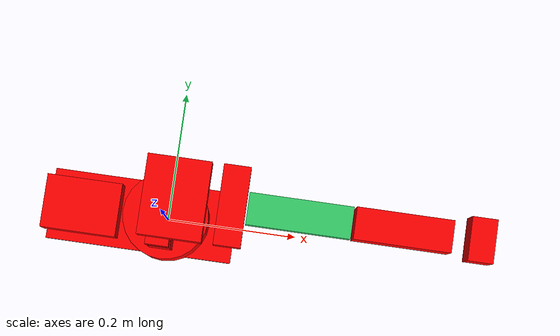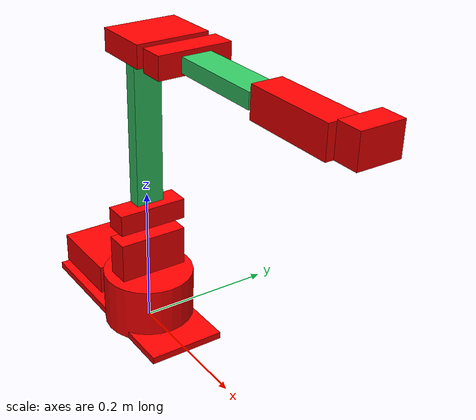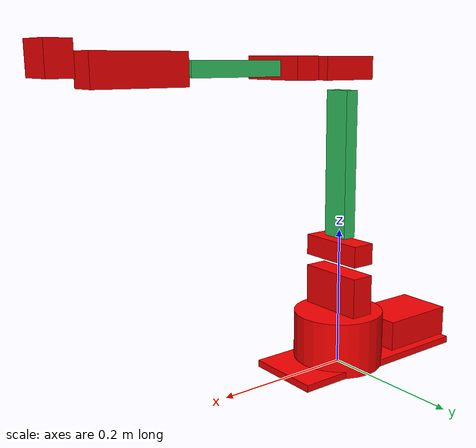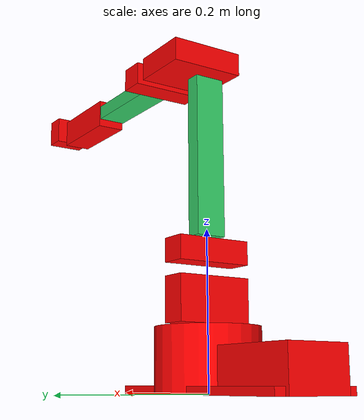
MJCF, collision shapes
<mujoco model="aloha">
    <compiler angle="radian" meshdir="assets" autolimits="true" />

    <asset>
        <mesh file="vx300s_1_base.stl" scale="0.001 0.001 0.001" />
        <mesh file="vx300s_2_shoulder.stl" scale="0.001 0.001 0.001" />
        <mesh file="vx300s_3_upper_arm.stl" scale="0.001 0.001 0.001" />
        <mesh file="vx300s_4_upper_forearm.stl" scale="0.001 0.001 0.001" />
        <mesh file="vx300s_5_lower_forearm.stl" scale="0.001 0.001 0.001" />
        <mesh file="vx300s_6_wrist.stl" scale="0.001 0.001 0.001" />
        <mesh file="custom_vx300s_3_upper_arm_part1.stl" />
        <mesh file="custom_vx300s_3_upper_arm_part2.stl" />
        <mesh file="custom_vx300s_3_upper_forearm_part1.stl" />
        <mesh file="custom_vx300s_3_upper_forearm_part2.stl" />
    </asset>

    <default>
        <default class="vx300s">
            <joint axis="0 1 0" actuatorfrcrange="-35 35" actuatorgravcomp="true" />
            <motor ctrlrange="-35 35" />
            <!-- group 4 means not a tracking site -->
            <site group="4" />
            <default class="waist">
                <joint axis="0 0 1" range="-3.14158 3.14158" damping="5.76" />
                <position ctrlrange="-3.14158 3.14158" kp="43" forcerange="-35 35" />
            </default>
            <default class="shoulder">
                <joint range="-1.85005 1.25664" armature="0.395" frictionloss="2.0" damping="20.0"
                    actuatorfrcrange="-144 144" />
                <position ctrlrange="-1.85005 1.25664" kp="265" forcerange="-144 144" />
            </default>
            <default class="elbow">
                <joint range="-1.76278 1.6057" armature="0.383" frictionloss="1.15" damping="18.49"
                    actuatorfrcrange="-59 59" />
                <position ctrlrange="-1.76278 1.6057" kp="227" forcerange="-59 59" />
            </default>
            <default class="forearm_roll">
                <joint axis="1 0 0" range="-3.14158 3.14158" armature="0.14" damping="6.78"
                    actuatorfrcrange="-22 22" />
                <position ctrlrange="-3.14158 3.14158" kp="78" forcerange="-22 22" />
            </default>
            <default class="wrist_angle">
                <joint range="-1.8675 2.23402" armature="0.008" damping="6.28"
                    actuatorfrcrange="-35 35" />
                <position ctrlrange="-1.8675 2.23402" kp="37" forcerange="-35 35" />
            </default>
            <default class="visual">
                <geom type="mesh" mass="0" group="2" contype="0" conaffinity="0" />
            </default>
            <default class="collision">
                <geom group="3" type="mesh" condim="6" friction="1 5e-3 5e-4" solref=".01 1" />
            </default>
        </default>
    </default>

    <worldbody>
        <body name="base_link" childclass="vx300s">
            <geom quat="1 0 0 1" class="visual" mesh="vx300s_1_base" />
            <geom type="cylinder" size="0.065 0.04" pos="0 0 0.04" class="collision"
                rgba="1 0
            0 1" mass="0.5" />
            <geom type="box" size="0.145 0.055 0.005" pos="-0.04 0 0.005" class="collision"
                rgba="1 0 0 1" mass="0.069034" />
            <geom type="box" size="0.058 0.041 0.027" pos="-0.132 0 0.027" class="collision"
                rgba="1 0 0 1" mass="0.4" />
            <body name="shoulder_link" pos="0 0 0.079">
                <joint name="waist" class="waist" />
                <geom pos="0 0 -0.003" quat="1 0 0 1" class="visual" mesh="vx300s_2_shoulder" />
                <geom pos="0.0005 0 0.033" rgba='1 0 0 1' type="box" size="0.017 0.05 0.0285"
                    class="collision" mass="0.798614" />
                <body name="upper_arm_link" pos="0 0 0.04805">
                    <geom pos="0.0005 0 0.045" rgba='1 0 0 1' type="box" size="0.017 0.05 0.015"
                        class="collision" mass="0.1" name="upper_arm_link_motor_housing" />
                    <joint name="shoulder" class="shoulder" />
                    <geom quat="1 0 0 1" class="visual" mesh="custom_vx300s_3_upper_arm_part1"
                    />
                    <geom quat="1 0 0 1" class="visual" mesh="custom_vx300s_3_upper_arm_part2"
                        name="upper_arm_connector" />
                    <geom type="box" size="0.01 0.02 0.103" pos="0 0 0.167" density="100"
                        rgba="0.2 0.8 0.4 1" name="upper_arm_extension" class="collision" />

                    <geom pos="0.033 0 0.3" rgba='1 0 0 1' type="box"
                        size="0.04 0.05 0.015"
                        class="collision" mass="0" name="upper_forearm_link_motor_housing" />
                    <body name="upper_forearm_link" pos="0.05955 0 0.3">
                        <geom pos="0.045 0 0.0005 " rgba='1 0 0 1' type="box"
                            size="0.017 0.05 0.015"
                            class="collision" mass="0" name="upper_forearm_link_connector" />
                        <joint name="elbow" class="elbow" />
                        <geom class="visual" mesh="custom_vx300s_3_upper_forearm_part1" mass="0.05" />
                        <geom class="visual" mesh="custom_vx300s_3_upper_forearm_part2"
                            name="upper_forearm_connector" mass="0.05" />
                        <geom type="box" size="0.064685 0.02 0.01" pos="0.128684 0 0" density="100"
                            rgba="0.2 0.8 0.4 1" name="upper_forearm_extension" class="collision" />
                        <body name="lower_forearm_link" pos="0.2 0 0">
                            <joint name="forearm_roll" class="forearm_roll" />
                            <geom quat="0 1 0 0" class="visual" mesh="vx300s_5_lower_forearm" />
                            <geom type="box" size="0.06 0.02 0.02" pos="0.056 0 0.0" rgba="1 0 0 1"
                                mass="0.414823" class="collision" />
                            <body name="wrist_link" pos="0.1 0 0">
                                <inertial pos="0.046743 -7.6652e-06 0.010565"
                                    quat="-0.00100191 0.544586 0.0026583 0.8387"
                                    mass="0.115395"
                                    diaginertia="5.45707e-05 4.63101e-05 4.32692e-05" />
                                <joint name="wrist_angle" class="wrist_angle" />
                                <geom quat="1 0 0 1" class="visual" mesh="vx300s_6_wrist" mass="0" />
                                <geom type="box" size="0.0155 0.027 0.02" pos="0.05 0 0.012"
                                    rgba="1 0 0 1"
                                    mass="0.115395"
                                    class="collision" />
                                <site name="gripper_mount_site" euler="0 1.57 -1.57"
                                    pos="0.104744 0 0" />
                            </body>
                        </body>
                    </body>
                </body>
            </body>
        </body>
    </worldbody>

</mujoco>
